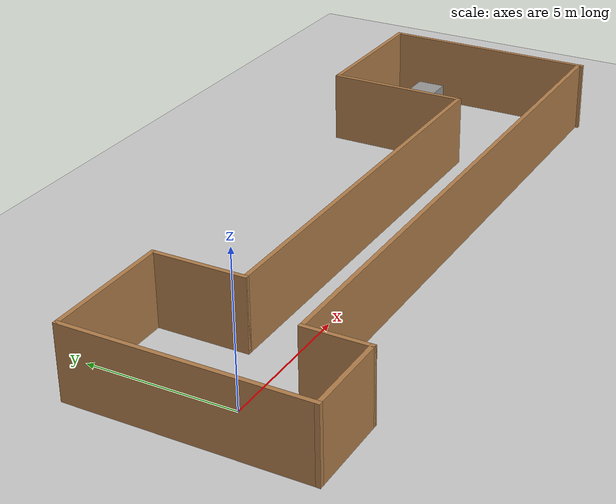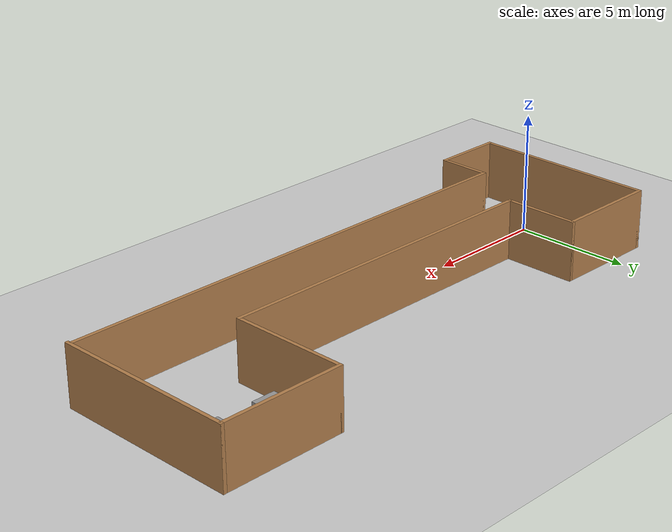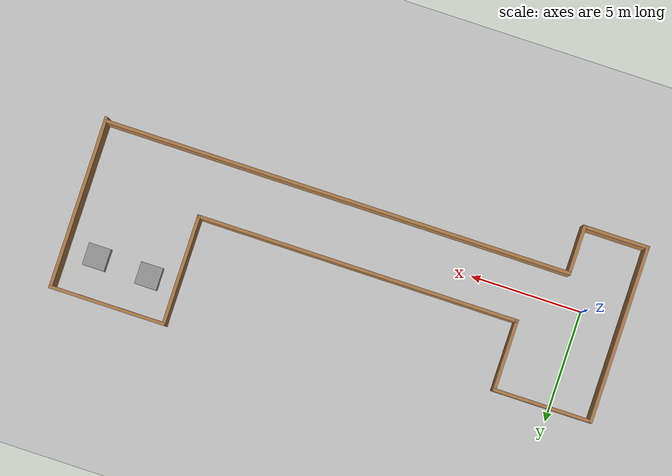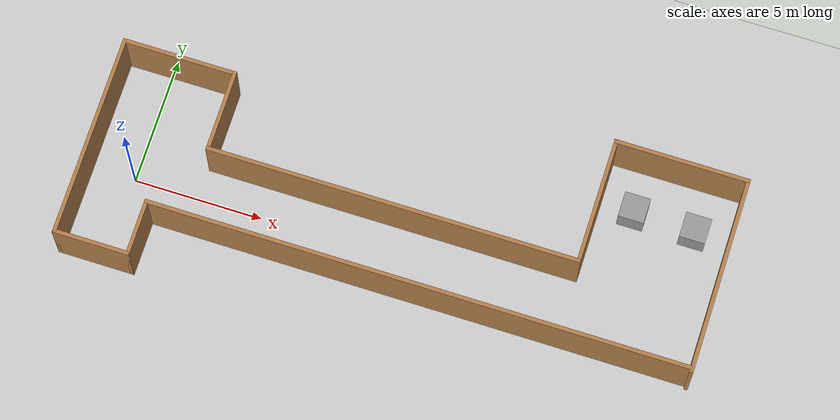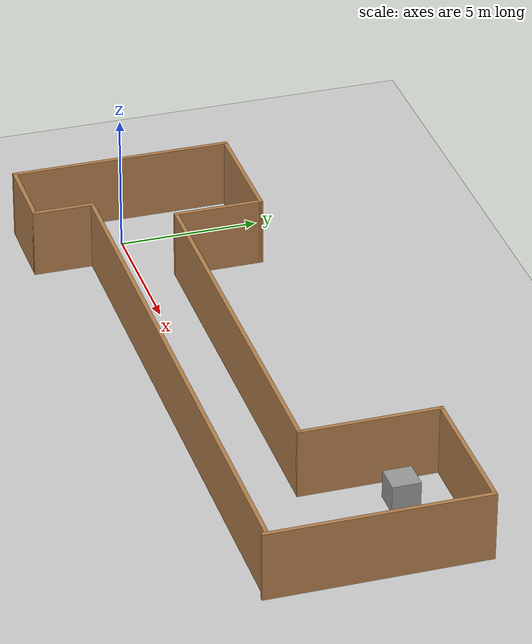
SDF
<sdf version="1.7">
 <world name="default">
  <light name="sun" type="directional">
   <pose>0 0 10 0 -0 0</pose>
   <diffuse>0.8 0.8 0.8 1</diffuse>
   <specular>0.2 0.2 0.2 1</specular>
   <attenuation>
    <range>1000</range>
    <constant>0.9</constant>
    <linear>0.01</linear>
    <quadratic>0.001</quadratic>
   </attenuation>
   <direction>-0.5 0.1 -0.9</direction>
   <spot><inner_angle>0</inner_angle><outer_angle>0</outer_angle><falloff>0</falloff></spot>
  </light>
  <model name="ground_plane">
   <static>1</static>
   <link name="link">
    <collision name="collision">
     <geometry><plane><normal>0 0 1</normal><size>100 100</size></plane></geometry>
     <surface>
      <contact><collide_bitmask>65535</collide_bitmask></contact>
      <friction><ode><mu>100</mu><mu2>50</mu2></ode></friction>
     </surface>
    </collision>
    <visual name="visual">
     <cast_shadows>0</cast_shadows>
     <geometry><plane><normal>0 0 1</normal><size>100 100</size></plane></geometry>
     <material>
      <script><uri>file://media/materials/scripts/gazebo.material</uri><name>Gazebo/Grey</name></script>
     </material>
    </visual>
   </link>
  </model>
  <gravity>0 0 -9.8</gravity>
  <magnetic_field>6e-06 2.3e-05 -4.2e-05</magnetic_field>
  <atmosphere type="adiabatic"/>
  <physics type="ode">
   <max_step_size>0.001</max_step_size>
   <real_time_factor>1</real_time_factor>
   <real_time_update_rate>1000</real_time_update_rate>
  </physics>
  <scene><ambient>0.4 0.4 0.4 1</ambient><background>0.7 0.7 0.7 1</background><shadows>1</shadows></scene>
  <spherical_coordinates>
   <surface_model>EARTH_WGS84</surface_model>
   <latitude_deg>0</latitude_deg>
   <longitude_deg>0</longitude_deg>
   <elevation>0</elevation>
   <heading_deg>0</heading_deg>
  </spherical_coordinates>
  <model name="corridor4">
   <pose>10.1509 1.34827 0 0 -0 0</pose>
   <link name="Wall_11">
    <collision name="Wall_11_Collision">
     <geometry><box><size>4.5 0.15 2.5</size></box></geometry>
     <pose>0 0 1.25 0 -0 0</pose>
    </collision>
    <visual name="Wall_11_Visual">
     <pose>0 0 1.25 0 -0 0</pose>
     <geometry><box><size>4.5 0.15 2.5</size></box></geometry>
     <material>
      <script><uri>file://media/materials/scripts/gazebo.material</uri><name>Gazebo/Wood</name></script>
      <ambient>1 1 1 1</ambient>
     </material>
     <meta><layer>0</layer></meta>
    </visual>
    <pose>-9.725 3.05 0 0 -0 0</pose>
   </link>
   <link name="Wall_12">
    <collision name="Wall_12_Collision">
     <geometry><box><size>3.25 0.15 2.5</size></box></geometry>
     <pose>0 0 1.25 0 -0 0</pose>
    </collision>
    <visual name="Wall_12_Visual">
     <pose>0 0 1.25 0 -0 0</pose>
     <geometry><box><size>3.25 0.15 2.5</size></box></geometry>
     <material>
      <script><uri>file://media/materials/scripts/gazebo.material</uri><name>Gazebo/Wood</name></script>
      <ambient>1 1 1 1</ambient>
     </material>
     <meta><layer>0</layer></meta>
    </visual>
    <pose>-7.55 1.5 0 0 -0 -1.5708</pose>
   </link>
   <link name="Wall_16">
    <collision name="Wall_16_Collision">
     <geometry><box><size>14.5 0.15 2.5</size></box></geometry>
     <pose>0 0 1.25 0 -0 0</pose>
    </collision>
    <visual name="Wall_16_Visual">
     <pose>0 0 1.25 0 -0 0</pose>
     <geometry><box><size>14.5 0.15 2.5</size></box></geometry>
     <material>
      <script><uri>file://media/materials/scripts/gazebo.material</uri><name>Gazebo/Wood</name></script>
      <ambient>1 1 1 1</ambient>
     </material>
     <meta><layer>0</layer></meta>
    </visual>
    <pose>-0.375 -0.05 0 0 -0 0</pose>
   </link>
   <link name="Wall_17">
    <collision name="Wall_17_Collision">
     <geometry><box><size>5 0.15 2.5</size></box></geometry>
     <pose>0 0 1.25 0 -0 0</pose>
    </collision>
    <visual name="Wall_17_Visual">
     <pose>0 0 1.25 0 -0 0</pose>
     <geometry><box><size>5 0.15 2.5</size></box></geometry>
     <material>
      <script><uri>file://media/materials/scripts/gazebo.material</uri><name>Gazebo/Wood</name></script>
      <ambient>1 1 1 1</ambient>
     </material>
     <meta><layer>0</layer></meta>
    </visual>
    <pose>6.8 2.375 0 0 -0 1.5708</pose>
   </link>
   <link name="Wall_24">
    <collision name="Wall_24_Collision">
     <geometry><box><size>5.25 0.15 2.5</size></box></geometry>
     <pose>0 0 1.25 0 -0 0</pose>
    </collision>
    <visual name="Wall_24_Visual">
     <pose>0 0 1.25 0 -0 0</pose>
     <geometry><box><size>5.25 0.15 2.5</size></box></geometry>
     <material>
      <script><uri>file://media/materials/scripts/gazebo.material</uri><name>Gazebo/Wood</name></script>
      <ambient>1 1 1 1</ambient>
     </material>
     <meta><layer>0</layer></meta>
    </visual>
    <pose>9.35 4.8 0 0 -0 0</pose>
   </link>
   <link name="Wall_29">
    <collision name="Wall_29_Collision">
     <geometry><box><size>7.75 0.15 2.5</size></box></geometry>
     <pose>0 0 1.25 0 -0 0</pose>
    </collision>
    <visual name="Wall_29_Visual">
     <pose>0 0 1.25 0 -0 0</pose>
     <geometry><box><size>7.75 0.15 2.5</size></box></geometry>
     <material>
      <script><uri>file://media/materials/scripts/gazebo.material</uri><name>Gazebo/Wood</name></script>
      <ambient>1 1 1 1</ambient>
     </material>
     <meta><layer>0</layer></meta>
    </visual>
    <pose>11.9 1 0 0 -0 -1.5708</pose>
   </link>
   <link name="Wall_5">
    <collision name="Wall_5_Collision">
     <geometry><box><size>8 0.15 2.5</size></box></geometry>
     <pose>0 0 1.25 0 -0 0</pose>
    </collision>
    <visual name="Wall_5_Visual">
     <pose>0 0 1.25 0 -0 0</pose>
     <geometry><box><size>8 0.15 2.5</size></box></geometry>
     <material>
      <script><uri>file://media/materials/scripts/gazebo.material</uri><name>Gazebo/Wood</name></script>
      <ambient>1 1 1 1</ambient>
     </material>
     <meta><layer>0</layer></meta>
    </visual>
    <pose>-11.9 -0.875 0 0 -0 1.5708</pose>
   </link>
   <link name="Wall_7">
    <collision name="Wall_7_Collision">
     <geometry><box><size>3 0.15 2.5</size></box></geometry>
     <pose>0 0 1.25 0 -0 0</pose>
    </collision>
    <visual name="Wall_7_Visual">
     <pose>0 0 1.25 0 -0 0</pose>
     <geometry><box><size>3 0.15 2.5</size></box></geometry>
     <material>
      <script><uri>file://media/materials/scripts/gazebo.material</uri><name>Gazebo/Wood</name></script>
      <ambient>1 1 1 1</ambient>
     </material>
     <meta><layer>0</layer></meta>
    </visual>
    <pose>-10.475 -4.8 0 0 -0 0</pose>
   </link>
   <link name="Wall_8">
    <collision name="Wall_8_Collision">
     <geometry><box><size>2.25 0.15 2.5</size></box></geometry>
     <pose>0 0 1.25 0 -0 0</pose>
    </collision>
    <visual name="Wall_8_Visual">
     <pose>0 0 1.25 0 -0 0</pose>
     <geometry><box><size>2.25 0.15 2.5</size></box></geometry>
     <material>
      <script><uri>file://media/materials/scripts/gazebo.material</uri><name>Gazebo/Wood</name></script>
      <ambient>1 1 1 1</ambient>
     </material>
     <meta><layer>0</layer></meta>
    </visual>
    <pose>-9.05 -3.75 0 0 -0 1.5708</pose>
   </link>
   <link name="Wall_9">
    <collision name="Wall_9_Collision">
     <geometry><box><size>21 0.15 2.5</size></box></geometry>
     <pose>0 0 1.25 0 -0 0</pose>
    </collision>
    <visual name="Wall_9_Visual">
     <pose>0 0 1.25 0 -0 0</pose>
     <geometry><box><size>21 0.15 2.5</size></box></geometry>
     <material>
      <script><uri>file://media/materials/scripts/gazebo.material</uri><name>Gazebo/Wood</name></script>
      <ambient>1 1 1 1</ambient>
     </material>
     <meta><layer>0</layer></meta>
    </visual>
    <pose>1.375 -2.7 0 0 -0 0</pose>
   </link>
   <static>1</static>
  </model>
  <model name="unit_box">
   <pose>20.6866 4.30026 0.499995 -1e-05 -0 0</pose>
   <link name="link">
    <inertial>
     <mass>1</mass>
     <inertia>
      <ixx>0.166667</ixx>
      <ixy>0</ixy>
      <ixz>0</ixz>
      <iyy>0.166667</iyy>
      <iyz>0</iyz>
      <izz>0.166667</izz>
     </inertia>
    </inertial>
    <collision name="collision"><geometry><box><size>1 1 1</size></box></geometry></collision>
    <visual name="visual">
     <geometry><box><size>1 1 1</size></box></geometry>
     <material>
      <script><name>Gazebo/Grey</name><uri>file://media/materials/scripts/gazebo.material</uri></script>
     </material>
    </visual>
   </link>
  </model>
  <model name="unit_box_0">
   <pose>18.2879 4.37454 0.5 0 -0 0</pose>
   <link name="link">
    <inertial>
     <mass>1</mass>
     <inertia>
      <ixx>0.166667</ixx>
      <ixy>0</ixy>
      <ixz>0</ixz>
      <iyy>0.166667</iyy>
      <iyz>0</iyz>
      <izz>0.166667</izz>
     </inertia>
    </inertial>
    <collision name="collision"><geometry><box><size>1 1 1</size></box></geometry></collision>
    <visual name="visual">
     <geometry><box><size>1 1 1</size></box></geometry>
     <material>
      <script><name>Gazebo/Grey</name><uri>file://media/materials/scripts/gazebo.material</uri></script>
     </material>
    </visual>
   </link>
  </model>
 </world>
</sdf>
